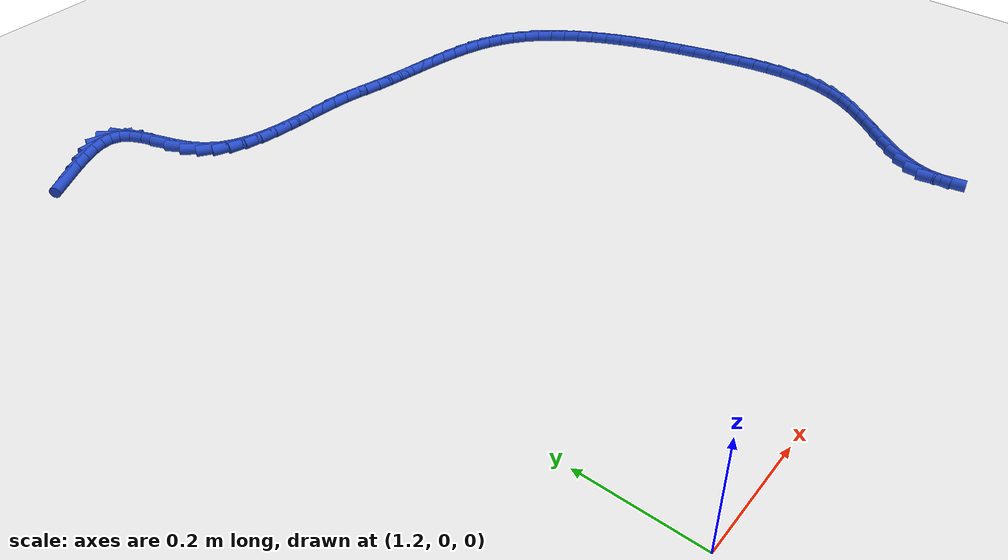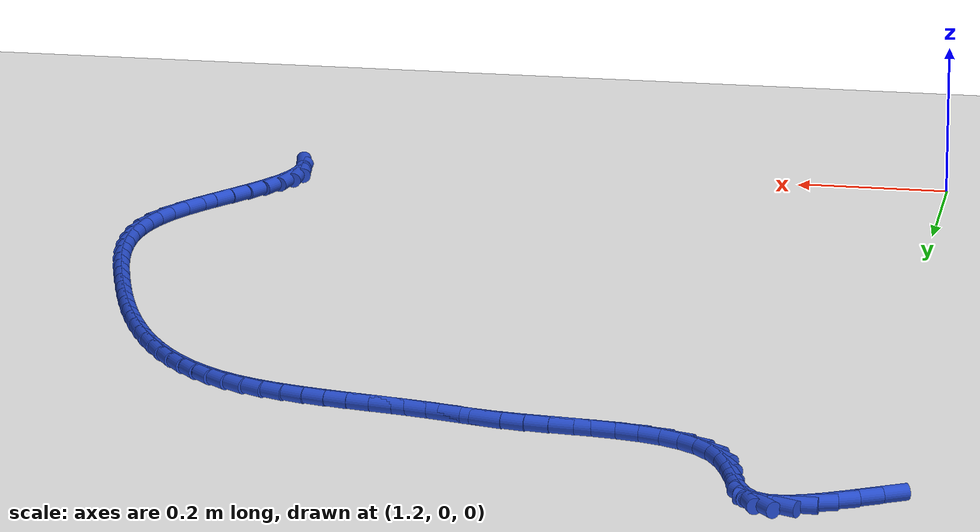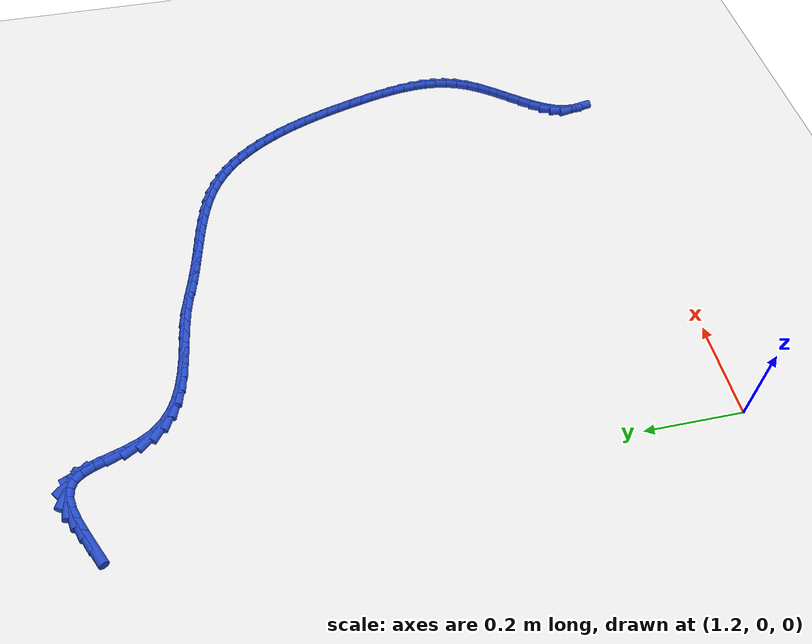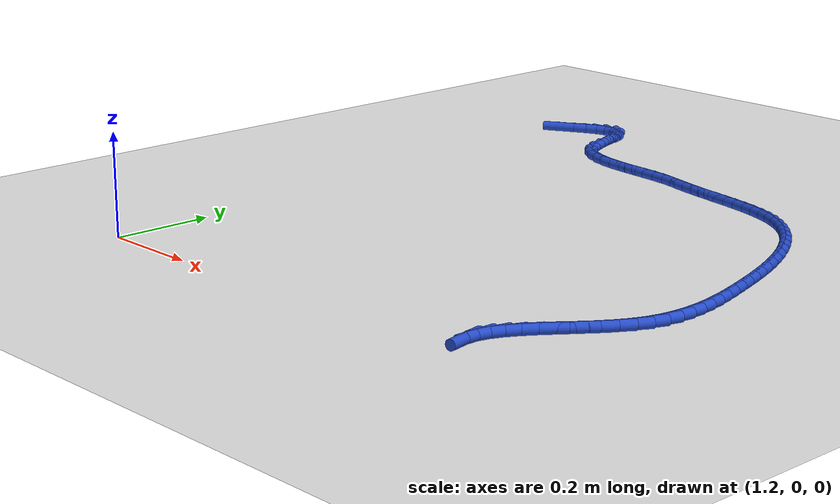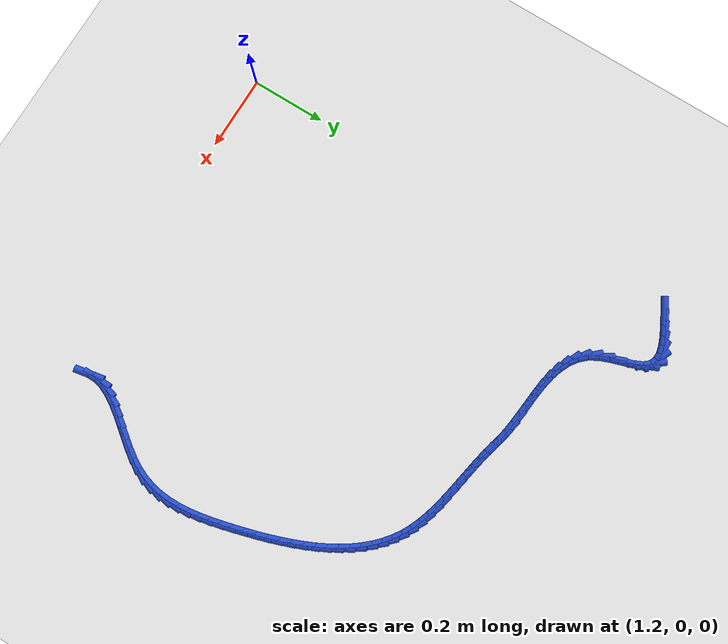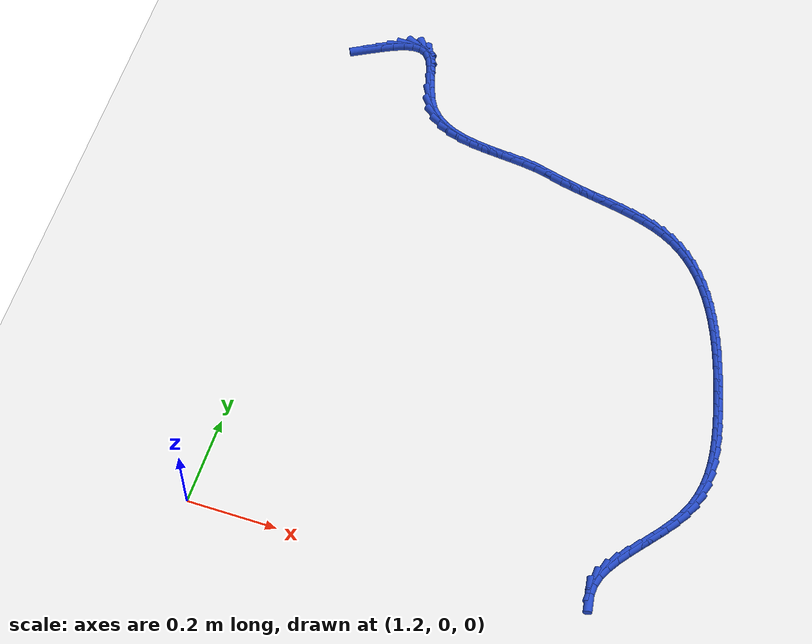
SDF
<sdf version="1.6">
 <world name="default">
  <model name="ground_plane">
   <static>1</static>
   <link name="link">
    <collision name="collision">
     <geometry><plane><normal>0 0 1</normal><size>100 100</size></plane></geometry>
     <surface><friction><ode><mu>100</mu><mu2>50</mu2></ode></friction></surface>
    </collision>
    <visual name="visual">
     <cast_shadows>0</cast_shadows>
     <geometry><plane><normal>0 0 1</normal><size>100 100</size></plane></geometry>
     <material>
      <script><uri>file://media/materials/scripts/gazebo.material</uri><name>Gazebo/WhiteGlow</name></script>
     </material>
    </visual>
   </link>
  </model>
  <model name="line">
   <link name="link_74">
    <pose>1.1713785718256622 1.2089067732727026 0.01 0 1.57 0.49295495261555883</pose>
    <collision name="collision">
     <geometry><cylinder><radius>0.01</radius><length>0.08</length></cylinder></geometry>
    </collision>
    <visual name="visual">
     <material>
      <script><name>Gazebo/Blue</name><uri>file://media/materials/scripts/gazebo.material</uri></script>
     </material>
     <geometry><cylinder><radius>0.01</radius><length>0.08</length></cylinder></geometry>
    </visual>
   </link>
   <link name="link_75">
    <pose>1.199503612337097 1.224015258015689 0.01 0 1.57 0.4615564652339835</pose>
    <collision name="collision">
     <geometry><cylinder><radius>0.01</radius><length>0.08</length></cylinder></geometry>
    </collision>
    <visual name="visual">
     <material>
      <script><name>Gazebo/Blue</name><uri>file://media/materials/scripts/gazebo.material</uri></script>
     </material>
     <geometry><cylinder><radius>0.01</radius><length>0.08</length></cylinder></geometry>
    </visual>
   </link>
   <link name="link_76">
    <pose>1.2255407065122632 1.2369658169566768 0.01 0 1.57 0.38621231644863746</pose>
    <collision name="collision">
     <geometry><cylinder><radius>0.01</radius><length>0.08</length></cylinder></geometry>
    </collision>
    <visual name="visual">
     <material>
      <script><name>Gazebo/Blue</name><uri>file://media/materials/scripts/gazebo.material</uri></script>
     </material>
     <geometry><cylinder><radius>0.01</radius><length>0.08</length></cylinder></geometry>
    </visual>
   </link>
   <link name="link_77">
    <pose>1.249300605213002 1.24662740205563 0.01 0 1.57 0.24135981206605966</pose>
    <collision name="collision">
     <geometry><cylinder><radius>0.01</radius><length>0.08</length></cylinder></geometry>
    </collision>
    <visual name="visual">
     <material>
      <script><name>Gazebo/Blue</name><uri>file://media/materials/scripts/gazebo.material</uri></script>
     </material>
     <geometry><cylinder><radius>0.01</radius><length>0.08</length></cylinder></geometry>
    </visual>
   </link>
   <link name="link_78">
    <pose>1.2705940593011547 1.251868965272513 0.01 0 1.57 -0.016604906011673547</pose>
    <collision name="collision">
     <geometry><cylinder><radius>0.01</radius><length>0.08</length></cylinder></geometry>
    </collision>
    <visual name="visual">
     <material>
      <script><name>Gazebo/Blue</name><uri>file://media/materials/scripts/gazebo.material</uri></script>
     </material>
     <geometry><cylinder><radius>0.01</radius><length>0.08</length></cylinder></geometry>
    </visual>
   </link>
   <link name="link_79">
    <pose>1.2892318196385613 1.2515594585672902 0.01 0 1.57 -0.4167743300254783</pose>
    <collision name="collision">
     <geometry><cylinder><radius>0.01</radius><length>0.08</length></cylinder></geometry>
    </collision>
    <visual name="visual">
     <material>
      <script><name>Gazebo/Blue</name><uri>file://media/materials/scripts/gazebo.material</uri></script>
     </material>
     <geometry><cylinder><radius>0.01</radius><length>0.08</length></cylinder></geometry>
    </visual>
   </link>
   <link name="link_80">
    <pose>1.3050246370870635 1.2445678338999253 0.01 0 1.57 -0.8580116966569575</pose>
    <collision name="collision">
     <geometry><cylinder><radius>0.01</radius><length>0.08</length></cylinder></geometry>
    </collision>
    <visual name="visual">
     <material>
      <script><name>Gazebo/Blue</name><uri>file://media/materials/scripts/gazebo.material</uri></script>
     </material>
     <geometry><cylinder><radius>0.01</radius><length>0.08</length></cylinder></geometry>
    </visual>
   </link>
   <link name="link_81">
    <pose>1.3177958503408016 1.229792872608516 0.01 0 1.57 -1.138590251693689</pose>
    <collision name="collision">
     <geometry><cylinder><radius>0.01</radius><length>0.08</length></cylinder></geometry>
    </collision>
    <visual name="visual">
     <material>
      <script><name>Gazebo/Blue</name><uri>file://media/materials/scripts/gazebo.material</uri></script>
     </material>
     <geometry><cylinder><radius>0.01</radius><length>0.08</length></cylinder></geometry>
    </visual>
   </link>
   <link name="link_82">
    <pose>1.3280094857140161 1.2076515930739842 0.01 0 1.57 -1.245973502258183</pose>
    <collision name="collision">
     <geometry><cylinder><radius>0.01</radius><length>0.08</length></cylinder></geometry>
    </collision>
    <visual name="visual">
     <material>
      <script><name>Gazebo/Blue</name><uri>file://media/materials/scripts/gazebo.material</uri></script>
     </material>
     <geometry><cylinder><radius>0.01</radius><length>0.08</length></cylinder></geometry>
    </visual>
   </link>
   <link name="link_83">
    <pose>1.337061819307198 1.1807701653983769 0.01 0 1.57 -1.2567565349614327</pose>
    <collision name="collision">
     <geometry><cylinder><radius>0.01</radius><length>0.08</length></cylinder></geometry>
    </collision>
    <visual name="visual">
     <material>
      <script><name>Gazebo/Blue</name><uri>file://media/materials/scripts/gazebo.material</uri></script>
     </material>
     <geometry><cylinder><radius>0.01</radius><length>0.08</length></cylinder></geometry>
    </visual>
   </link>
   <link name="link_84">
    <pose>1.3464226111404582 1.1519488944809817 0.01 0 1.57 -1.1916878088650122</pose>
    <collision name="collision">
     <geometry><cylinder><radius>0.01</radius><length>0.08</length></cylinder></geometry>
    </collision>
    <visual name="visual">
     <material>
      <script><name>Gazebo/Blue</name><uri>file://media/materials/scripts/gazebo.material</uri></script>
     </material>
     <geometry><cylinder><radius>0.01</radius><length>0.08</length></cylinder></geometry>
    </visual>
   </link>
   <link name="link_85">
    <pose>1.35756162123391 1.1239880852210893 0.01 0 1.57 -1.037506071401784</pose>
    <collision name="collision">
     <geometry><cylinder><radius>0.01</radius><length>0.08</length></cylinder></geometry>
    </collision>
    <visual name="visual">
     <material>
      <script><name>Gazebo/Blue</name><uri>file://media/materials/scripts/gazebo.material</uri></script>
     </material>
     <geometry><cylinder><radius>0.01</radius><length>0.08</length></cylinder></geometry>
    </visual>
   </link>
   <link name="link_86">
    <pose>1.3719280264231 1.0996524909664198 0.01 0 1.57 -0.8162143831728979</pose>
    <collision name="collision">
     <geometry><cylinder><radius>0.01</radius><length>0.08</length></cylinder></geometry>
    </collision>
    <visual name="visual">
     <material>
      <script><name>Gazebo/Blue</name><uri>file://media/materials/scripts/gazebo.material</uri></script>
     </material>
     <geometry><cylinder><radius>0.01</radius><length>0.08</length></cylinder></geometry>
    </visual>
   </link>
   <link name="link_87">
    <pose>1.3901437467605104 1.0802780160889869 0.01 0 1.57 -0.6058501648124712</pose>
    <collision name="collision">
     <geometry><cylinder><radius>0.01</radius><length>0.08</length></cylinder></geometry>
    </collision>
    <visual name="visual">
     <material>
      <script><name>Gazebo/Blue</name><uri>file://media/materials/scripts/gazebo.material</uri></script>
     </material>
     <geometry><cylinder><radius>0.01</radius><length>0.08</length></cylinder></geometry>
    </visual>
   </link>
   <link name="link_88">
    <pose>1.4117401291456568 1.065316912430601 0.01 0 1.57 -0.4306181032862476</pose>
    <collision name="collision">
     <geometry><cylinder><radius>0.01</radius><length>0.08</length></cylinder></geometry>
    </collision>
    <visual name="visual">
     <material>
      <script><name>Gazebo/Blue</name><uri>file://media/materials/scripts/gazebo.material</uri></script>
     </material>
     <geometry><cylinder><radius>0.01</radius><length>0.08</length></cylinder></geometry>
    </visual>
   </link>
   <link name="link_89">
    <pose>1.4361740100945755 1.054092736502558 0.01 0 1.57 -0.29643414198307305</pose>
    <collision name="collision">
     <geometry><cylinder><radius>0.01</radius><length>0.08</length></cylinder></geometry>
    </collision>
    <visual name="visual">
     <material>
      <script><name>Gazebo/Blue</name><uri>file://media/materials/scripts/gazebo.material</uri></script>
     </material>
     <geometry><cylinder><radius>0.01</radius><length>0.08</length></cylinder></geometry>
    </visual>
   </link>
   <link name="link_90">
    <pose>1.4629022261233007 1.0459290448161518 0.01 0 1.57 -0.20022236217920122</pose>
    <collision name="collision">
     <geometry><cylinder><radius>0.01</radius><length>0.08</length></cylinder></geometry>
    </collision>
    <visual name="visual">
     <material>
      <script><name>Gazebo/Blue</name><uri>file://media/materials/scripts/gazebo.material</uri></script>
     </material>
     <geometry><cylinder><radius>0.01</radius><length>0.08</length></cylinder></geometry>
    </visual>
   </link>
   <link name="link_91">
    <pose>1.491381613747869 1.0401493938826798 0.01 0 1.57 -0.13631376968144715</pose>
    <collision name="collision">
     <geometry><cylinder><radius>0.01</radius><length>0.08</length></cylinder></geometry>
    </collision>
    <visual name="visual">
     <material>
      <script><name>Gazebo/Blue</name><uri>file://media/materials/scripts/gazebo.material</uri></script>
     </material>
     <geometry><cylinder><radius>0.01</radius><length>0.08</length></cylinder></geometry>
    </visual>
   </link>
   <link name="link_92">
    <pose>1.521069009484315 1.0360773402134362 0.01 0 1.57 -0.09985379719548045</pose>
    <collision name="collision">
     <geometry><cylinder><radius>0.01</radius><length>0.08</length></cylinder></geometry>
    </collision>
    <visual name="visual">
     <material>
      <script><name>Gazebo/Blue</name><uri>file://media/materials/scripts/gazebo.material</uri></script>
     </material>
     <geometry><cylinder><radius>0.01</radius><length>0.08</length></cylinder></geometry>
    </visual>
   </link>
   <link name="link_93">
    <pose>1.5514212498486728 1.0330364403197168 0.01 0 1.57 -0.08791991868423821</pose>
    <collision name="collision">
     <geometry><cylinder><radius>0.01</radius><length>0.08</length></cylinder></geometry>
    </collision>
    <visual name="visual">
     <material>
      <script><name>Gazebo/Blue</name><uri>file://media/materials/scripts/gazebo.material</uri></script>
     </material>
     <geometry><cylinder><radius>0.01</radius><length>0.08</length></cylinder></geometry>
    </visual>
   </link>
   <link name="link_94">
    <pose>1.5818951713569798 1.0303502507128175 0.01 0 1.57 -0.09975690971519934</pose>
    <collision name="collision">
     <geometry><cylinder><radius>0.01</radius><length>0.08</length></cylinder></geometry>
    </collision>
    <visual name="visual">
     <material>
      <script><name>Gazebo/Blue</name><uri>file://media/materials/scripts/gazebo.material</uri></script>
     </material>
     <geometry><cylinder><radius>0.01</radius><length>0.08</length></cylinder></geometry>
    </visual>
   </link>
   <link name="link_95">
    <pose>1.6119476105252701 1.0273423279040332 0.01 0 1.57 -0.13686341268414562</pose>
    <collision name="collision">
     <geometry><cylinder><radius>0.01</radius><length>0.08</length></cylinder></geometry>
    </collision>
    <visual name="visual">
     <material>
      <script><name>Gazebo/Blue</name><uri>file://media/materials/scripts/gazebo.material</uri></script>
     </material>
     <geometry><cylinder><radius>0.01</radius><length>0.08</length></cylinder></geometry>
    </visual>
   </link>
   <link name="link_96">
    <pose>1.6410354038695787 1.0233362284046597 0.01 0 1.57 -0.19704599022724548</pose>
    <collision name="collision">
     <geometry><cylinder><radius>0.01</radius><length>0.08</length></cylinder></geometry>
    </collision>
    <visual name="visual">
     <material>
      <script><name>Gazebo/Blue</name><uri>file://media/materials/scripts/gazebo.material</uri></script>
     </material>
     <geometry><cylinder><radius>0.01</radius><length>0.08</length></cylinder></geometry>
    </visual>
   </link>
   <link name="link_97">
    <pose>1.6687412795041514 1.017805125111784 0.01 0 1.57 -0.23836080155259223</pose>
    <collision name="collision">
     <geometry><cylinder><radius>0.01</radius><length>0.08</length></cylinder></geometry>
    </collision>
    <visual name="visual">
     <material>
      <script><name>Gazebo/Blue</name><uri>file://media/materials/scripts/gazebo.material</uri></script>
     </material>
     <geometry><cylinder><radius>0.01</radius><length>0.08</length></cylinder></geometry>
    </visual>
   </link>
   <link name="link_98">
    <pose>1.6955478509860813 1.0112916634647457 0.01 0 1.57 -0.23768660667706584</pose>
    <collision name="collision">
     <geometry><cylinder><radius>0.01</radius><length>0.08</length></cylinder></geometry>
    </collision>
    <visual name="visual">
     <material>
      <script><name>Gazebo/Blue</name><uri>file://media/materials/scripts/gazebo.material</uri></script>
     </material>
     <geometry><cylinder><radius>0.01</radius><length>0.08</length></cylinder></geometry>
    </visual>
   </link>
   <link name="link_99">
    <pose>1.722329006458755 1.004803495986129 0.01 0 1.57 -0.2078536651800361</pose>
    <collision name="collision">
     <geometry><cylinder><radius>0.01</radius><length>0.08</length></cylinder></geometry>
    </collision>
    <visual name="visual">
     <material>
      <script><name>Gazebo/Blue</name><uri>file://media/materials/scripts/gazebo.material</uri></script>
     </material>
     <geometry><cylinder><radius>0.01</radius><length>0.08</length></cylinder></geometry>
    </visual>
   </link>
   <link name="link_100">
    <pose>1.749695109125096 0.999031995201498 0.01 0 1.57 -0.1856301814729433</pose>
    <collision name="collision">
     <geometry><cylinder><radius>0.01</radius><length>0.08</length></cylinder></geometry>
    </collision>
    <visual name="visual">
     <material>
      <script><name>Gazebo/Blue</name><uri>file://media/materials/scripts/gazebo.material</uri></script>
     </material>
     <geometry><cylinder><radius>0.01</radius><length>0.08</length></cylinder></geometry>
    </visual>
   </link>
   <link name="link_101">
    <pose>1.7775359080695217 0.9938037111769527 0.01 0 1.57 -0.17633108525758234</pose>
    <collision name="collision">
     <geometry><cylinder><radius>0.01</radius><length>0.08</length></cylinder></geometry>
    </collision>
    <visual name="visual">
     <material>
      <script><name>Gazebo/Blue</name><uri>file://media/materials/scripts/gazebo.material</uri></script>
     </material>
     <geometry><cylinder><radius>0.01</radius><length>0.08</length></cylinder></geometry>
    </visual>
   </link>
   <link name="link_102">
    <pose>1.8056198874933618 0.9887996617280519 0.01 0 1.57 -0.17952610534996266</pose>
    <collision name="collision">
     <geometry><cylinder><radius>0.01</radius><length>0.08</length></cylinder></geometry>
    </collision>
    <visual name="visual">
     <material>
      <script><name>Gazebo/Blue</name><uri>file://media/materials/scripts/gazebo.material</uri></script>
     </material>
     <geometry><cylinder><radius>0.01</radius><length>0.08</length></cylinder></geometry>
    </visual>
   </link>
   <link name="link_103">
    <pose>1.833715531597947 0.9837008646703547 0.01 0 1.57 -0.1952342304267062</pose>
    <collision name="collision">
     <geometry><cylinder><radius>0.01</radius><length>0.08</length></cylinder></geometry>
    </collision>
    <visual name="visual">
     <material>
      <script><name>Gazebo/Blue</name><uri>file://media/materials/scripts/gazebo.material</uri></script>
     </material>
     <geometry><cylinder><radius>0.01</radius><length>0.08</length></cylinder></geometry>
    </visual>
   </link>
   <link name="link_104">
    <pose>1.861591324584608 0.9781883378194195 0.01 0 1.57 -0.22390701327934104</pose>
    <collision name="collision">
     <geometry><cylinder><radius>0.01</radius><length>0.08</length></cylinder></geometry>
    </collision>
    <visual name="visual">
     <material>
      <script><name>Gazebo/Blue</name><uri>file://media/materials/scripts/gazebo.material</uri></script>
     </material>
     <geometry><cylinder><radius>0.01</radius><length>0.08</length></cylinder></geometry>
    </visual>
   </link>
   <link name="link_105">
    <pose>1.889015750654674 0.9719430989908054 0.01 0 1.57 -0.26638377870765884</pose>
    <collision name="collision">
     <geometry><cylinder><radius>0.01</radius><length>0.08</length></cylinder></geometry>
    </collision>
    <visual name="visual">
     <material>
      <script><name>Gazebo/Blue</name><uri>file://media/materials/scripts/gazebo.material</uri></script>
     </material>
     <geometry><cylinder><radius>0.01</radius><length>0.08</length></cylinder></geometry>
    </visual>
   </link>
   <link name="link_106">
    <pose>1.9157572940094767 0.9646461660000717 0.01 0 1.57 -0.323789844905359</pose>
    <collision name="collision">
     <geometry><cylinder><radius>0.01</radius><length>0.08</length></cylinder></geometry>
    </collision>
    <visual name="visual">
     <material>
      <script><name>Gazebo/Blue</name><uri>file://media/materials/scripts/gazebo.material</uri></script>
     </material>
     <geometry><cylinder><radius>0.01</radius><length>0.08</length></cylinder></geometry>
    </visual>
   </link>
   <link name="link_107">
    <pose>1.9415844388503447 0.9559785566627768 0.01 0 1.57 -0.3973231840050279</pose>
    <collision name="collision">
     <geometry><cylinder><radius>0.01</radius><length>0.08</length></cylinder></geometry>
    </collision>
    <visual name="visual">
     <material>
      <script><name>Gazebo/Blue</name><uri>file://media/materials/scripts/gazebo.material</uri></script>
     </material>
     <geometry><cylinder><radius>0.01</radius><length>0.08</length></cylinder></geometry>
    </visual>
   </link>
   <link name="link_108">
    <pose>1.966265669378609 0.9456212887944794 0.01 0 1.57 -0.4877601092303347</pose>
    <collision name="collision">
     <geometry><cylinder><radius>0.01</radius><length>0.08</length></cylinder></geometry>
    </collision>
    <visual name="visual">
     <material>
      <script><name>Gazebo/Blue</name><uri>file://media/materials/scripts/gazebo.material</uri></script>
     </material>
     <geometry><cylinder><radius>0.01</radius><length>0.08</length></cylinder></geometry>
    </visual>
   </link>
   <link name="link_109">
    <pose>1.9895708619164505 0.9332575478841955 0.01 0 1.57 -0.5875498177555368</pose>
    <collision name="collision">
     <geometry><cylinder><radius>0.01</radius><length>0.08</length></cylinder></geometry>
    </collision>
    <visual name="visual">
     <material>
      <script><name>Gazebo/Blue</name><uri>file://media/materials/scripts/gazebo.material</uri></script>
     </material>
     <geometry><cylinder><radius>0.01</radius><length>0.08</length></cylinder></geometry>
    </visual>
   </link>
   <link name="link_110">
    <pose>2.0113756881936236 0.9187352536082676 0.01 0 1.57 -0.6827356986547469</pose>
    <collision name="collision">
     <geometry><cylinder><radius>0.01</radius><length>0.08</length></cylinder></geometry>
    </collision>
    <visual name="visual">
     <material>
      <script><name>Gazebo/Blue</name><uri>file://media/materials/scripts/gazebo.material</uri></script>
     </material>
     <geometry><cylinder><radius>0.01</radius><length>0.08</length></cylinder></geometry>
    </visual>
   </link>
   <link name="link_111">
    <pose>2.0317340776886357 0.9021798910501537 0.01 0 1.57 -0.7707878271845666</pose>
    <collision name="collision">
     <geometry><cylinder><radius>0.01</radius><length>0.08</length></cylinder></geometry>
    </collision>
    <visual name="visual">
     <material>
      <script><name>Gazebo/Blue</name><uri>file://media/materials/scripts/gazebo.material</uri></script>
     </material>
     <geometry><cylinder><radius>0.01</radius><length>0.08</length></cylinder></geometry>
    </visual>
   </link>
   <link name="link_112">
    <pose>2.0507170928631155 0.8837436230869513 0.01 0 1.57 -0.8510032232640922</pose>
    <collision name="collision">
     <geometry><cylinder><radius>0.01</radius><length>0.08</length></cylinder></geometry>
    </collision>
    <visual name="visual">
     <material>
      <script><name>Gazebo/Blue</name><uri>file://media/materials/scripts/gazebo.material</uri></script>
     </material>
     <geometry><cylinder><radius>0.01</radius><length>0.08</length></cylinder></geometry>
    </visual>
   </link>
   <link name="link_113">
    <pose>2.068395796178692 0.8635786125957579 0.01 0 1.57 -0.9232084166802205</pose>
    <collision name="collision">
     <geometry><cylinder><radius>0.01</radius><length>0.08</length></cylinder></geometry>
    </collision>
    <visual name="visual">
     <material>
      <script><name>Gazebo/Blue</name><uri>file://media/materials/scripts/gazebo.material</uri></script>
     </material>
     <geometry><cylinder><radius>0.01</radius><length>0.08</length></cylinder></geometry>
    </visual>
   </link>
   <link name="link_114">
    <pose>2.084841250096994 0.8418370224536716 0.01 0 1.57 -0.9876127038786578</pose>
    <collision name="collision">
     <geometry><cylinder><radius>0.01</radius><length>0.08</length></cylinder></geometry>
    </collision>
    <visual name="visual">
     <material>
      <script><name>Gazebo/Blue</name><uri>file://media/materials/scripts/gazebo.material</uri></script>
     </material>
     <geometry><cylinder><radius>0.01</radius><length>0.08</length></cylinder></geometry>
    </visual>
   </link>
   <link name="link_115">
    <pose>2.100124517079651 0.8186710155377903 0.01 0 1.57 -1.044663056705886</pose>
    <collision name="collision">
     <geometry><cylinder><radius>0.01</radius><length>0.08</length></cylinder></geometry>
    </collision>
    <visual name="visual">
     <material>
      <script><name>Gazebo/Blue</name><uri>file://media/materials/scripts/gazebo.material</uri></script>
     </material>
     <geometry><cylinder><radius>0.01</radius><length>0.08</length></cylinder></geometry>
    </visual>
   </link>
   <link name="link_116">
    <pose>2.114316659588293 0.7942327547252113 0.01 0 1.57 -1.094926212117301</pose>
    <collision name="collision">
     <geometry><cylinder><radius>0.01</radius><length>0.08</length></cylinder></geometry>
    </collision>
    <visual name="visual">
     <material>
      <script><name>Gazebo/Blue</name><uri>file://media/materials/scripts/gazebo.material</uri></script>
     </material>
     <geometry><cylinder><radius>0.01</radius><length>0.08</length></cylinder></geometry>
    </visual>
   </link>
   <link name="link_117">
    <pose>2.127488740084548 0.7686744028930319 0.01 0 1.57 -1.1390046195365806</pose>
    <collision name="collision">
     <geometry><cylinder><radius>0.01</radius><length>0.08</length></cylinder></geometry>
    </collision>
    <visual name="visual">
     <material>
      <script><name>Gazebo/Blue</name><uri>file://media/materials/scripts/gazebo.material</uri></script>
     </material>
     <geometry><cylinder><radius>0.01</radius><length>0.08</length></cylinder></geometry>
    </visual>
   </link>
   <link name="link_118">
    <pose>2.1397118210300454 0.7421481229183509 0.01 0 1.57 -1.177482480496765</pose>
    <collision name="collision">
     <geometry><cylinder><radius>0.01</radius><length>0.08</length></cylinder></geometry>
    </collision>
    <visual name="visual">
     <material>
      <script><name>Gazebo/Blue</name><uri>file://media/materials/scripts/gazebo.material</uri></script>
     </material>
     <geometry><cylinder><radius>0.01</radius><length>0.08</length></cylinder></geometry>
    </visual>
   </link>
   <link name="link_119">
    <pose>2.1510569648864153 0.7148060776782655 0.01 0 1.57 -1.2108944242815376</pose>
    <collision name="collision">
     <geometry><cylinder><radius>0.01</radius><length>0.08</length></cylinder></geometry>
    </collision>
    <visual name="visual">
     <material>
      <script><name>Gazebo/Blue</name><uri>file://media/materials/scripts/gazebo.material</uri></script>
     </material>
     <geometry><cylinder><radius>0.01</radius><length>0.08</length></cylinder></geometry>
    </visual>
   </link>
   <link name="link_120">
    <pose>2.161595234115286 0.6868004300498737 0.01 0 1.57 -1.2397093962678314</pose>
    <collision name="collision">
     <geometry><cylinder><radius>0.01</radius><length>0.08</length></cylinder></geometry>
    </collision>
    <visual name="visual">
     <material>
      <script><name>Gazebo/Blue</name><uri>file://media/materials/scripts/gazebo.material</uri></script>
     </material>
     <geometry><cylinder><radius>0.01</radius><length>0.08</length></cylinder></geometry>
    </visual>
   </link>
   <link name="link_121">
    <pose>2.1713976911782864 0.6582833429102727 0.01 0 1.57 -1.2643238005538973</pose>
    <collision name="collision">
     <geometry><cylinder><radius>0.01</radius><length>0.08</length></cylinder></geometry>
    </collision>
    <visual name="visual">
     <material>
      <script><name>Gazebo/Blue</name><uri>file://media/materials/scripts/gazebo.material</uri></script>
     </material>
     <geometry><cylinder><radius>0.01</radius><length>0.08</length></cylinder></geometry>
    </visual>
   </link>
   <link name="link_122">
    <pose>2.1805353985370464 0.62940697913656 0.01 0 1.57 -1.2850595998994752</pose>
    <collision name="collision">
     <geometry><cylinder><radius>0.01</radius><length>0.08</length></cylinder></geometry>
    </collision>
    <visual name="visual">
     <material>
      <script><name>Gazebo/Blue</name><uri>file://media/materials/scripts/gazebo.material</uri></script>
     </material>
     <geometry><cylinder><radius>0.01</radius><length>0.08</length></cylinder></geometry>
    </visual>
   </link>
   <link name="link_123">
    <pose>2.189079418653195 0.6003235016058344 0.01 0 1.57 -1.302164436999325</pose>
    <collision name="collision">
     <geometry><cylinder><radius>0.01</radius><length>0.08</length></cylinder></geometry>
    </collision>
    <visual name="visual">
     <material>
      <script><name>Gazebo/Blue</name><uri>file://media/materials/scripts/gazebo.material</uri></script>
     </material>
     <geometry><cylinder><radius>0.01</radius><length>0.08</length></cylinder></geometry>
    </visual>
   </link>
   <link name="link_124">
    <pose>2.197100813988361 0.5711850731951928 0.01 0 1.57 -1.3171961281923081</pose>
    <collision name="collision">
     <geometry><cylinder><radius>0.01</radius><length>0.08</length></cylinder></geometry>
    </collision>
    <visual name="visual">
     <material>
      <script><name>Gazebo/Blue</name><uri>file://media/materials/scripts/gazebo.material</uri></script>
     </material>
     <geometry><cylinder><radius>0.01</radius><length>0.08</length></cylinder></geometry>
    </visual>
   </link>
   <link name="link_125">
    <pose>2.2046302459336578 0.5421341416581295 0.01 0 1.57 -1.3394549115529766</pose>
    <collision name="collision">
     <geometry><cylinder><radius>0.01</radius><length>0.08</length></cylinder></geometry>
    </collision>
    <visual name="visual">
     <material>
      <script><name>Gazebo/Blue</name><uri>file://media/materials/scripts/gazebo.material</uri></script>
     </material>
     <geometry><cylinder><radius>0.01</radius><length>0.08</length></cylinder></geometry>
    </visual>
   </link>
   <link name="link_126">
    <pose>2.211434243516193 0.5132496396350152 0.01 0 1.57 -1.3731984736814138</pose>
    <collision name="collision">
     <geometry><cylinder><radius>0.01</radius><length>0.08</length></cylinder></geometry>
    </collision>
    <visual name="visual">
     <material>
      <script><name>Gazebo/Blue</name><uri>file://media/materials/scripts/gazebo.material</uri></script>
     </material>
     <geometry><cylinder><radius>0.01</radius><length>0.08</length></cylinder></geometry>
    </visual>
   </link>
   <link name="link_127">
    <pose>2.217173206466828 0.48458497917437066 0.01 0 1.57 -1.4193128973068914</pose>
    <collision name="collision">
     <geometry><cylinder><radius>0.01</radius><length>0.08</length></cylinder></geometry>
    </collision>
    <visual name="visual">
     <material>
      <script><name>Gazebo/Blue</name><uri>file://media/materials/scripts/gazebo.material</uri></script>
     </material>
     <geometry><cylinder><radius>0.01</radius><length>0.08</length></cylinder></geometry>
    </visual>
   </link>
   <link name="link_128">
    <pose>2.221507246855923 0.4561935031518618 0.01 0 1.57 -1.4787982609421646</pose>
    <collision name="collision">
     <geometry><cylinder><radius>0.01</radius><length>0.08</length></cylinder></geometry>
    </collision>
    <visual name="visual">
     <material>
      <script><name>Gazebo/Blue</name><uri>file://media/materials/scripts/gazebo.material</uri></script>
     </material>
     <geometry><cylinder><radius>0.01</radius><length>0.08</length></cylinder></geometry>
    </visual>
   </link>
   <link name="link_129">
    <pose>2.22409647675384 0.42812855444315495 0.01 0 1.57 -1.5525743942053443</pose>
    <collision name="collision">
     <geometry><cylinder><radius>0.01</radius><length>0.08</length></cylinder></geometry>
    </collision>
    <visual name="visual">
     <material>
      <script><name>Gazebo/Blue</name><uri>file://media/materials/scripts/gazebo.material</uri></script>
     </material>
     <geometry><cylinder><radius>0.01</radius><length>0.08</length></cylinder></geometry>
    </visual>
   </link>
   <link name="link_130">
    <pose>2.2246010082309366 0.40044347592391616 0.01 0 1.57 1.5004566565502935</pose>
    <collision name="collision">
     <geometry><cylinder><radius>0.01</radius><length>0.08</length></cylinder></geometry>
    </collision>
    <visual name="visual">
     <material>
      <script><name>Gazebo/Blue</name><uri>file://media/materials/scripts/gazebo.material</uri></script>
     </material>
     <geometry><cylinder><radius>0.01</radius><length>0.08</length></cylinder></geometry>
    </visual>
   </link>
   <link name="link_131">
    <pose>2.2226809533575738 0.3731916104698113 0.01 0 1.57 1.3975289098835177</pose>
    <collision name="collision">
     <geometry><cylinder><radius>0.01</radius><length>0.08</length></cylinder></geometry>
    </collision>
    <visual name="visual">
     <material>
      <script><name>Gazebo/Blue</name><uri>file://media/materials/scripts/gazebo.material</uri></script>
     </material>
     <geometry><cylinder><radius>0.01</radius><length>0.08</length></cylinder></geometry>
    </visual>
   </link>
   <link name="link_132">
    <pose>2.2179964242041126 0.34642630095650767 0.01 0 1.57 1.282096042055167</pose>
    <collision name="collision">
     <geometry><cylinder><radius>0.01</radius><length>0.08</length></cylinder></geometry>
    </collision>
    <visual name="visual">
     <material>
      <script><name>Gazebo/Blue</name><uri>file://media/materials/scripts/gazebo.material</uri></script>
     </material>
     <geometry><cylinder><radius>0.01</radius><length>0.08</length></cylinder></geometry>
    </visual>
   </link>
   <link name="link_133">
    <pose>2.2102075328409123 0.32020089025967086 0.01 0 1.57 1.158225259750889</pose>
    <collision name="collision">
     <geometry><cylinder><radius>0.01</radius><length>0.08</length></cylinder></geometry>
    </collision>
    <visual name="visual">
     <material>
      <script><name>Gazebo/Blue</name><uri>file://media/materials/scripts/gazebo.material</uri></script>
     </material>
     <geometry><cylinder><radius>0.01</radius><length>0.08</length></cylinder></geometry>
    </visual>
   </link>
   <link name="link_134">
    <pose>2.198987987568352 0.2945674286640243 0.01 0 1.57 1.047807311710974</pose>
    <collision name="collision">
     <geometry><cylinder><radius>0.01</radius><length>0.08</length></cylinder></geometry>
    </collision>
    <visual name="visual">
     <material>
      <script><name>Gazebo/Blue</name><uri>file://media/materials/scripts/gazebo.material</uri></script>
     </material>
     <geometry><cylinder><radius>0.01</radius><length>0.08</length></cylinder></geometry>
    </visual>
   </link>
   <link name="link_135">
    <pose>2.1845510508015096 0.26952667114956697 0.01 0 1.57 0.9718409482650047</pose>
    <collision name="collision">
     <geometry><cylinder><radius>0.01</radius><length>0.08</length></cylinder></geometry>
    </collision>
    <visual name="visual">
     <material>
      <script><name>Gazebo/Blue</name><uri>file://media/materials/scripts/gazebo.material</uri></script>
     </material>
     <geometry><cylinder><radius>0.01</radius><length>0.08</length></cylinder></geometry>
    </visual>
   </link>
   <link name="link_136">
    <pose>2.1678173161425676 0.2450121268579398 0.01 0 1.57 0.9268303785515483</pose>
    <collision name="collision">
     <geometry><cylinder><radius>0.01</radius><length>0.08</length></cylinder></geometry>
    </collision>
    <visual name="visual">
     <material>
      <script><name>Gazebo/Blue</name><uri>file://media/materials/scripts/gazebo.material</uri></script>
     </material>
     <geometry><cylinder><radius>0.01</radius><length>0.08</length></cylinder></geometry>
    </visual>
   </link>
   <link name="link_137">
    <pose>2.149755301854148 0.2209527487426376 0.01 0 1.57 0.9095509299331802</pose>
    <collision name="collision">
     <geometry><cylinder><radius>0.01</radius><length>0.08</length></cylinder></geometry>
    </collision>
    <visual name="visual">
     <material>
      <script><name>Gazebo/Blue</name><uri>file://media/materials/scripts/gazebo.material</uri></script>
     </material>
     <geometry><cylinder><radius>0.01</radius><length>0.08</length></cylinder></geometry>
    </visual>
   </link>
   <link name="link_138">
    <pose>2.1313335261988717 0.1972774897571554 0.01 0 1.57 0.9193606595058127</pose>
    <collision name="collision">
     <geometry><cylinder><radius>0.01</radius><length>0.08</length></cylinder></geometry>
    </collision>
    <visual name="visual">
     <material>
      <script><name>Gazebo/Blue</name><uri>file://media/materials/scripts/gazebo.material</uri></script>
     </material>
     <geometry><cylinder><radius>0.01</radius><length>0.08</length></cylinder></geometry>
    </visual>
   </link>
   <link name="link_139">
    <pose>2.11352050743936 0.1739153028549884 0.01 0 1.57 0.9585731901935216</pose>
    <collision name="collision">
     <geometry><cylinder><radius>0.01</radius><length>0.08</length></cylinder></geometry>
    </collision>
    <visual name="visual">
     <material>
      <script><name>Gazebo/Blue</name><uri>file://media/materials/scripts/gazebo.material</uri></script>
     </material>
     <geometry><cylinder><radius>0.01</radius><length>0.08</length></cylinder></geometry>
    </visual>
   </link>
   <link name="link_140">
    <pose>2.0972847638382333 0.15079514098963126 0.01 0 1.57 1.0329298406416025</pose>
    <collision name="collision">
     <geometry><cylinder><radius>0.01</radius><length>0.08</length></cylinder></geometry>
    </collision>
    <visual name="visual">
     <material>
      <script><name>Gazebo/Blue</name><uri>file://media/materials/scripts/gazebo.material</uri></script>
     </material>
     <geometry><cylinder><radius>0.01</radius><length>0.08</length></cylinder></geometry>
    </visual>
   </link>
   <link name="link_141">
    <pose>2.0835948136581153 0.12784595711457997 0.01 0 1.57 1.1518261566667727</pose>
    <collision name="collision">
     <geometry><cylinder><radius>0.01</radius><length>0.08</length></cylinder></geometry>
    </collision>
    <visual name="visual">
     <material>
      <script><name>Gazebo/Blue</name><uri>file://media/materials/scripts/gazebo.material</uri></script>
     </material>
     <geometry><cylinder><radius>0.01</radius><length>0.08</length></cylinder></geometry>
    </visual>
   </link>
   <link name="link_142">
    <pose>2.073419175161625 0.10499670418332914 0.01 0 1.57 1.3263243426185574</pose>
    <collision name="collision">
     <geometry><cylinder><radius>0.01</radius><length>0.08</length></cylinder></geometry>
    </collision>
    <visual name="visual">
     <material>
      <script><name>Gazebo/Blue</name><uri>file://media/materials/scripts/gazebo.material</uri></script>
     </material>
     <geometry><cylinder><radius>0.01</radius><length>0.08</length></cylinder></geometry>
    </visual>
   </link>
   <link name="link_143">
    <pose>2.0677263666113856 0.08217633514937397 0.01 0 1.57 1.549249126843703</pose>
    <collision name="collision">
     <geometry><cylinder><radius>0.01</radius><length>0.08</length></cylinder></geometry>
    </collision>
    <visual name="visual">
     <material>
      <script><name>Gazebo/Blue</name><uri>file://media/materials/scripts/gazebo.material</uri></script>
     </material>
     <geometry><cylinder><radius>0.01</radius><length>0.08</length></cylinder></geometry>
    </visual>
   </link>
   <link name="link_144">
    <pose>2.067233759723953 0.059318114589540075 0.01 0 1.57 -1.3845322873343917</pose>
    <collision name="collision">
     <geometry><cylinder><radius>0.01</radius><length>0.08</length></cylinder></geometry>
    </collision>
    <visual name="visual">
     <material>
      <script><name>Gazebo/Blue</name><uri>file://media/materials/scripts/gazebo.material</uri></script>
     </material>
     <geometry><cylinder><radius>0.01</radius><length>0.08</length></cylinder></geometry>
    </visual>
   </link>
  </model>
 </world>
</sdf>
